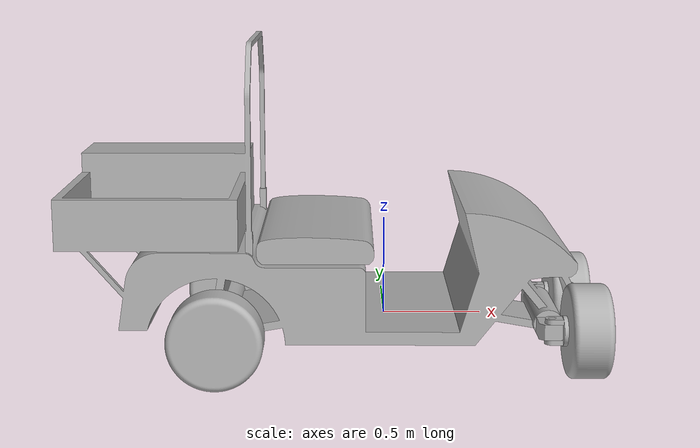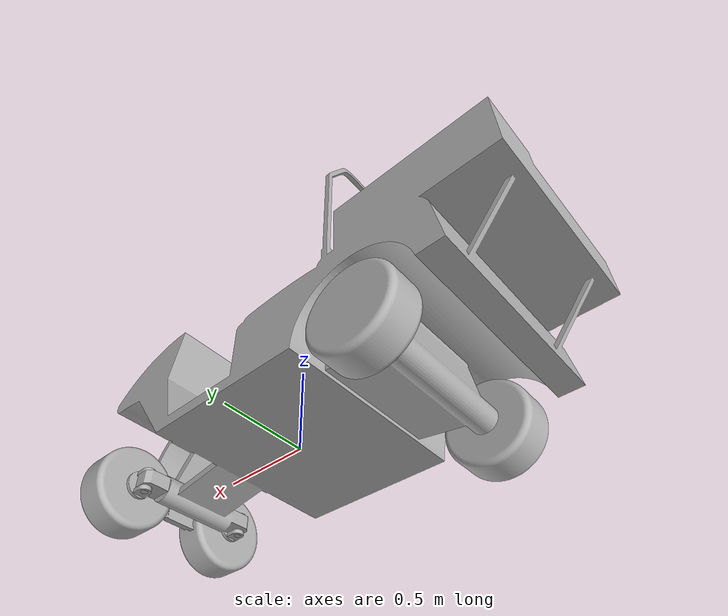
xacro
<?xml version="1.0" ?>
<robot name="caddy_ai2" xmlns:xacro="http://www.ros.org/wiki/xacro">

<xacro:include filename="$(find caddy_ai2_description)/urdf/materials.xacro" />
<xacro:include filename="$(find caddy_ai2_description)/urdf/caddy_ai2.trans" />
<xacro:include filename="$(find caddy_ai2_description)/urdf/caddy_ai2.gazebo" />
<link name="base_link">
  <inertial>
    <origin xyz="-0.3751746943893013 0.044790387571770916 0.34395145211741857" rpy="0 0 0"/>
    <mass value="6904.153997841791"/>
    <inertia ixx="1012.974128" iyy="3519.422832" izz="3979.942956" ixy="237.292652" iyz="-86.910765" ixz="271.47264"/>
  </inertial>
  <visual>
    <origin xyz="0 0 0" rpy="0 0 0"/>
    <geometry>
      <mesh filename="file://$(find caddy_ai2_description)/meshes/base_link.stl" scale="0.001 0.001 0.001"/>
    </geometry>
    <material name="silver"/>
  </visual>
  <collision>
    <origin xyz="0 0 0" rpy="0 0 0"/>
    <geometry>
      <mesh filename="file://$(find caddy_ai2_description)/meshes/base_link.stl" scale="0.001 0.001 0.001"/>
    </geometry>
  </collision>
</link>

<link name="steering_hub_left_1">
  <inertial>
    <origin xyz="0.04503654747079233 -1.575538229270368e-06 -0.06500000000000006" rpy="0 0 0"/>
    <mass value="4.494220600265263"/>
    <inertia ixx="0.01341" iyy="0.01229" izz="0.008238" ixy="0.0" iyz="-0.0" ixz="-0.0"/>
  </inertial>
  <visual>
    <origin xyz="-0.825 -0.33 -0.065" rpy="0 0 0"/>
    <geometry>
      <mesh filename="file://$(find caddy_ai2_description)/meshes/steering_hub_left_1.stl" scale="0.001 0.001 0.001"/>
    </geometry>
    <material name="silver"/>
  </visual>
  <collision>
    <origin xyz="-0.825 -0.33 -0.065" rpy="0 0 0"/>
    <geometry>
      <mesh filename="file://$(find caddy_ai2_description)/meshes/steering_hub_left_1.stl" scale="0.001 0.001 0.001"/>
    </geometry>
  </collision>
</link>

<link name="steering_hub_right_1">
  <inertial>
    <origin xyz="0.04503654747079233 -1.5755382292148568e-06 -0.06500000000000006" rpy="0 0 0"/>
    <mass value="4.494220600265263"/>
    <inertia ixx="0.01341" iyy="0.01229" izz="0.008238" ixy="0.0" iyz="-0.0" ixz="-0.0"/>
  </inertial>
  <visual>
    <origin xyz="-0.825 0.33 -0.065" rpy="0 0 0"/>
    <geometry>
      <mesh filename="file://$(find caddy_ai2_description)/meshes/steering_hub_right_1.stl" scale="0.001 0.001 0.001"/>
    </geometry>
    <material name="silver"/>
  </visual>
  <collision>
    <origin xyz="-0.825 0.33 -0.065" rpy="0 0 0"/>
    <geometry>
      <mesh filename="file://$(find caddy_ai2_description)/meshes/steering_hub_right_1.stl" scale="0.001 0.001 0.001"/>
    </geometry>
  </collision>
</link>

<link name="wheel_front_right_1">
  <inertial>
    <origin xyz="0.1000001611093454 3.3061980014847947e-07 4.2976393018370405e-17" rpy="0 0 0"/>
    <mass value="268.03659227457297"/>
    <inertia ixx="7.294149" iyy="4.517093" izz="4.517093" ixy="0.0" iyz="-0.0" ixz="-0.0"/>
  </inertial>
  <visual>
    <origin xyz="-0.898058 0.330002 -0.0" rpy="0 0 0"/>
    <geometry>
      <mesh filename="file://$(find caddy_ai2_description)/meshes/wheel_front_right_1.stl" scale="0.001 0.001 0.001"/>
    </geometry>
    <material name="silver"/>
  </visual>
  <collision>
    <origin xyz="-0.898058 0.330002 -0.0" rpy="0 0 0"/>
    <geometry>
      <mesh filename="file://$(find caddy_ai2_description)/meshes/wheel_front_right_1.stl" scale="0.001 0.001 0.001"/>
    </geometry>
  </collision>
</link>

<link name="wheel_front_left_1">
  <inertial>
    <origin xyz="0.1000001611093454 3.306198000929683e-07 4.2976393018370405e-17" rpy="0 0 0"/>
    <mass value="268.03659227457297"/>
    <inertia ixx="7.294149" iyy="4.517093" izz="4.517093" ixy="0.0" iyz="-0.0" ixz="-0.0"/>
  </inertial>
  <visual>
    <origin xyz="-0.898058 -0.329998 -0.0" rpy="0 0 0"/>
    <geometry>
      <mesh filename="file://$(find caddy_ai2_description)/meshes/wheel_front_left_1.stl" scale="0.001 0.001 0.001"/>
    </geometry>
    <material name="silver"/>
  </visual>
  <collision>
    <origin xyz="-0.898058 -0.329998 -0.0" rpy="0 0 0"/>
    <geometry>
      <mesh filename="file://$(find caddy_ai2_description)/meshes/wheel_front_left_1.stl" scale="0.001 0.001 0.001"/>
    </geometry>
  </collision>
</link>

<link name="wheel_rear_right_1">
  <inertial>
    <origin xyz="2.294870193875198e-08 -0.10000000305175777 2.0302065772370454e-09" rpy="0 0 0"/>
    <mass value="268.03659227457297"/>
    <inertia ixx="4.517093" iyy="7.294149" izz="4.517093" ixy="0.0" iyz="-0.0" ixz="0.0"/>
  </inertial>
  <visual>
    <origin xyz="0.825 0.4018 -0.0" rpy="0 0 0"/>
    <geometry>
      <mesh filename="file://$(find caddy_ai2_description)/meshes/wheel_rear_right_1.stl" scale="0.001 0.001 0.001"/>
    </geometry>
    <material name="silver"/>
  </visual>
  <collision>
    <origin xyz="0.825 0.4018 -0.0" rpy="0 0 0"/>
    <geometry>
      <mesh filename="file://$(find caddy_ai2_description)/meshes/wheel_rear_right_1.stl" scale="0.001 0.001 0.001"/>
    </geometry>
  </collision>
</link>

<link name="wheel_rear_left_1">
  <inertial>
    <origin xyz="2.294870193875198e-08 0.10000000305175777 2.0302065806276914e-09" rpy="0 0 0"/>
    <mass value="268.03659227457297"/>
    <inertia ixx="4.517093" iyy="7.294149" izz="4.517093" ixy="-0.0" iyz="-0.0" ixz="-0.0"/>
  </inertial>
  <visual>
    <origin xyz="0.825 -0.4018 -0.0" rpy="0 0 0"/>
    <geometry>
      <mesh filename="file://$(find caddy_ai2_description)/meshes/wheel_rear_left_1.stl" scale="0.001 0.001 0.001"/>
    </geometry>
    <material name="silver"/>
  </visual>
  <collision>
    <origin xyz="0.825 -0.4018 -0.0" rpy="0 0 0"/>
    <geometry>
      <mesh filename="file://$(find caddy_ai2_description)/meshes/wheel_rear_left_1.stl" scale="0.001 0.001 0.001"/>
    </geometry>
  </collision>
</link>

<joint name="steer_left_joint" type="continuous">
  <origin xyz="0.825 0.33 0.065" rpy="0 0 0"/>
  <parent link="base_link"/>
  <child link="steering_hub_left_1"/>
  <axis xyz="0.0 0.0 1.0"/>
</joint>

<joint name="steer_right_joint" type="continuous">
  <origin xyz="0.825 -0.33 0.065" rpy="0 0 0"/>
  <parent link="base_link"/>
  <child link="steering_hub_right_1"/>
  <axis xyz="0.0 0.0 1.0"/>
</joint>

<joint name="front_right_joint" type="continuous">
  <origin xyz="0.073058 -2e-06 -0.065" rpy="0 0 0"/>
  <parent link="steering_hub_right_1"/>
  <child link="wheel_front_right_1"/>
  <axis xyz="1.0 0.0 0.0"/>
</joint>

<joint name="front_left_joint" type="continuous">
  <origin xyz="0.073058 -2e-06 -0.065" rpy="0 0 0"/>
  <parent link="steering_hub_left_1"/>
  <child link="wheel_front_left_1"/>
  <axis xyz="1.0 0.0 0.0"/>
</joint>

<joint name="rear_right_joint" type="continuous">
  <origin xyz="-0.825 -0.4018 0.0" rpy="0 0 0"/>
  <parent link="base_link"/>
  <child link="wheel_rear_right_1"/>
  <axis xyz="0.0 -1.0 0.0"/>
</joint>

<joint name="rear_left_joint" type="continuous">
  <origin xyz="-0.825 0.4018 0.0" rpy="0 0 0"/>
  <parent link="base_link"/>
  <child link="wheel_rear_left_1"/>
  <axis xyz="0.0 1.0 0.0"/>
</joint>

</robot>

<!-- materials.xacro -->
<robot name="caddy_ai2" xmlns:xacro="http://www.ros.org/wiki/xacro" >

<material name="silver">
  <color rgba="0.700 0.700 0.700 1.000"/>
</material>

</robot>

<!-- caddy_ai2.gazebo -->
<robot name="caddy_ai2" xmlns:xacro="http://www.ros.org/wiki/xacro" >

<xacro:property name="body_color" value="Gazebo/Silver" />

<gazebo>
  <plugin name="control" filename="libgazebo_ros_control.so"/>
</gazebo>
<gazebo reference="base_link">
  <material>${body_color}</material>
  <mu1>0.2</mu1>
  <mu2>0.2</mu2>
  <self_collide>true</self_collide>
  <gravity>true</gravity>
</gazebo>

<gazebo reference="steering_hub_left_1">
  <material>${body_color}</material>
  <mu1>0.2</mu1>
  <mu2>0.2</mu2>
  <self_collide>true</self_collide>
</gazebo>

<gazebo reference="steering_hub_right_1">
  <material>${body_color}</material>
  <mu1>0.2</mu1>
  <mu2>0.2</mu2>
  <self_collide>true</self_collide>
</gazebo>

<gazebo reference="wheel_front_right_1">
  <material>${body_color}</material>
  <mu1>0.2</mu1>
  <mu2>0.2</mu2>
  <self_collide>true</self_collide>
</gazebo>

<gazebo reference="wheel_front_left_1">
  <material>${body_color}</material>
  <mu1>0.2</mu1>
  <mu2>0.2</mu2>
  <self_collide>true</self_collide>
</gazebo>

<gazebo reference="wheel_rear_right_1">
  <material>${body_color}</material>
  <mu1>0.2</mu1>
  <mu2>0.2</mu2>
  <self_collide>true</self_collide>
</gazebo>

<gazebo reference="wheel_rear_left_1">
  <material>${body_color}</material>
  <mu1>0.2</mu1>
  <mu2>0.2</mu2>
  <self_collide>true</self_collide>
</gazebo>

</robot>
